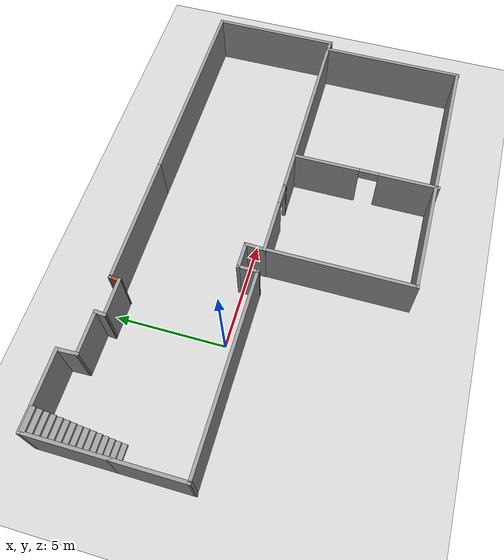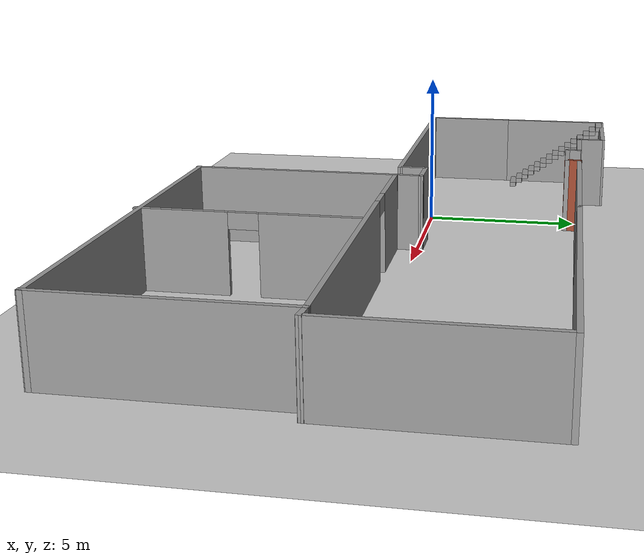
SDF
<sdf version="1.7">
 <world name="default">
  <light name="sun" type="directional">
   <pose>0 0 10 0 -0 0</pose>
   <diffuse>0.8 0.8 0.8 1</diffuse>
   <specular>0.2 0.2 0.2 1</specular>
   <attenuation>
    <range>1000</range>
    <constant>0.9</constant>
    <linear>0.01</linear>
    <quadratic>0.001</quadratic>
   </attenuation>
   <direction>-0.5 0.1 -0.9</direction>
   <spot><inner_angle>0</inner_angle><outer_angle>0</outer_angle><falloff>0</falloff></spot>
  </light>
  <model name="ground_plane">
   <static>1</static>
   <link name="link">
    <collision name="collision">
     <geometry><plane><normal>0 0 1</normal><size>100 100</size></plane></geometry>
     <surface><friction><ode><mu>100</mu><mu2>50</mu2></ode></friction></surface>
    </collision>
    <visual name="visual">
     <cast_shadows>0</cast_shadows>
     <geometry><plane><normal>0 0 1</normal><size>100 100</size></plane></geometry>
     <material>
      <script><uri>file://media/materials/scripts/gazebo.material</uri><name>Gazebo/Grey</name></script>
     </material>
    </visual>
   </link>
  </model>
  <gravity>0 0 -9.8</gravity>
  <magnetic_field>6e-06 2.3e-05 -4.2e-05</magnetic_field>
  <atmosphere type="adiabatic"/>
  <physics type="ode">
   <max_step_size>0.001</max_step_size>
   <real_time_factor>1</real_time_factor>
   <real_time_update_rate>1000</real_time_update_rate>
  </physics>
  <scene><ambient>0.4 0.4 0.4 1</ambient><background>0.7 0.7 0.7 1</background><shadows>1</shadows></scene>
  <audio><device>default</device></audio>
  <spherical_coordinates>
   <surface_model>EARTH_WGS84</surface_model>
   <latitude_deg>0</latitude_deg>
   <longitude_deg>0</longitude_deg>
   <elevation>0</elevation>
   <heading_deg>0</heading_deg>
  </spherical_coordinates>
  <model name="test">
   <pose>5.09811 -0.706058 0 0 -0 0</pose>
   <link name="Stairs_1">
    <visual name="Stairs_1_Visual_0">
     <pose>-10.6248 3.31727 0.083333 0 -0 -3.14159</pose>
     <geometry><box><size>1 0.233333 0.166667</size></box></geometry>
     <material>
      <script><uri>file://media/materials/scripts/gazebo.material</uri><name>Gazebo/Grey</name></script>
      <ambient>1 1 1 1</ambient>
     </material>
     <meta><layer>0</layer></meta>
    </visual>
    <collision name="Stairs_1_Collision_0">
     <geometry><box><size>1 0.233333 0.166667</size></box></geometry>
     <pose>-10.6248 3.31727 0.083333 0 -0 -3.14159</pose>
    </collision>
    <visual name="Stairs_1_Visual_1">
     <pose>-10.6248 3.55061 0.25 0 -0 -3.14159</pose>
     <geometry><box><size>1 0.233333 0.166667</size></box></geometry>
     <material>
      <script><uri>file://media/materials/scripts/gazebo.material</uri><name>Gazebo/Grey</name></script>
      <ambient>1 1 1 1</ambient>
     </material>
     <meta><layer>0</layer></meta>
    </visual>
    <collision name="Stairs_1_Collision_1">
     <geometry><box><size>1 0.233333 0.166667</size></box></geometry>
     <pose>-10.6248 3.55061 0.25 0 -0 -3.14159</pose>
    </collision>
    <visual name="Stairs_1_Visual_2">
     <pose>-10.6248 3.78394 0.416667 0 -0 -3.14159</pose>
     <geometry><box><size>1 0.233333 0.166667</size></box></geometry>
     <material>
      <script><uri>file://media/materials/scripts/gazebo.material</uri><name>Gazebo/Grey</name></script>
      <ambient>1 1 1 1</ambient>
     </material>
     <meta><layer>0</layer></meta>
    </visual>
    <collision name="Stairs_1_Collision_2">
     <geometry><box><size>1 0.233333 0.166667</size></box></geometry>
     <pose>-10.6248 3.78394 0.416667 0 -0 -3.14159</pose>
    </collision>
    <visual name="Stairs_1_Visual_3">
     <pose>-10.6248 4.01727 0.583333 0 -0 -3.14159</pose>
     <geometry><box><size>1 0.233333 0.166667</size></box></geometry>
     <material>
      <script><uri>file://media/materials/scripts/gazebo.material</uri><name>Gazebo/Grey</name></script>
      <ambient>1 1 1 1</ambient>
     </material>
     <meta><layer>0</layer></meta>
    </visual>
    <collision name="Stairs_1_Collision_3">
     <geometry><box><size>1 0.233333 0.166667</size></box></geometry>
     <pose>-10.6248 4.01727 0.583333 0 -0 -3.14159</pose>
    </collision>
    <visual name="Stairs_1_Visual_4">
     <pose>-10.6248 4.25061 0.75 0 -0 -3.14159</pose>
     <geometry><box><size>1 0.233333 0.166667</size></box></geometry>
     <material>
      <script><uri>file://media/materials/scripts/gazebo.material</uri><name>Gazebo/Grey</name></script>
      <ambient>1 1 1 1</ambient>
     </material>
     <meta><layer>0</layer></meta>
    </visual>
    <collision name="Stairs_1_Collision_4">
     <geometry><box><size>1 0.233333 0.166667</size></box></geometry>
     <pose>-10.6248 4.25061 0.75 0 -0 -3.14159</pose>
    </collision>
    <visual name="Stairs_1_Visual_5">
     <pose>-10.6248 4.48394 0.916667 0 -0 -3.14159</pose>
     <geometry><box><size>1 0.233333 0.166667</size></box></geometry>
     <material>
      <script><uri>file://media/materials/scripts/gazebo.material</uri><name>Gazebo/Grey</name></script>
      <ambient>1 1 1 1</ambient>
     </material>
     <meta><layer>0</layer></meta>
    </visual>
    <collision name="Stairs_1_Collision_5">
     <geometry><box><size>1 0.233333 0.166667</size></box></geometry>
     <pose>-10.6248 4.48394 0.916667 0 -0 -3.14159</pose>
    </collision>
    <visual name="Stairs_1_Visual_6">
     <pose>-10.6248 4.71727 1.08333 0 -0 -3.14159</pose>
     <geometry><box><size>1 0.233333 0.166667</size></box></geometry>
     <material>
      <script><uri>file://media/materials/scripts/gazebo.material</uri><name>Gazebo/Grey</name></script>
      <ambient>1 1 1 1</ambient>
     </material>
     <meta><layer>0</layer></meta>
    </visual>
    <collision name="Stairs_1_Collision_6">
     <geometry><box><size>1 0.233333 0.166667</size></box></geometry>
     <pose>-10.6248 4.71727 1.08333 0 -0 -3.14159</pose>
    </collision>
    <visual name="Stairs_1_Visual_7">
     <pose>-10.6248 4.95061 1.25 0 -0 -3.14159</pose>
     <geometry><box><size>1 0.233333 0.166667</size></box></geometry>
     <material>
      <script><uri>file://media/materials/scripts/gazebo.material</uri><name>Gazebo/Grey</name></script>
      <ambient>1 1 1 1</ambient>
     </material>
     <meta><layer>0</layer></meta>
    </visual>
    <collision name="Stairs_1_Collision_7">
     <geometry><box><size>1 0.233333 0.166667</size></box></geometry>
     <pose>-10.6248 4.95061 1.25 0 -0 -3.14159</pose>
    </collision>
    <visual name="Stairs_1_Visual_8">
     <pose>-10.6248 5.18394 1.41667 0 -0 -3.14159</pose>
     <geometry><box><size>1 0.233333 0.166667</size></box></geometry>
     <material>
      <script><uri>file://media/materials/scripts/gazebo.material</uri><name>Gazebo/Grey</name></script>
      <ambient>1 1 1 1</ambient>
     </material>
     <meta><layer>0</layer></meta>
    </visual>
    <collision name="Stairs_1_Collision_8">
     <geometry><box><size>1 0.233333 0.166667</size></box></geometry>
     <pose>-10.6248 5.18394 1.41667 0 -0 -3.14159</pose>
    </collision>
    <visual name="Stairs_1_Visual_9">
     <pose>-10.6248 5.41727 1.58333 0 -0 -3.14159</pose>
     <geometry><box><size>1 0.233333 0.166667</size></box></geometry>
     <material>
      <script><uri>file://media/materials/scripts/gazebo.material</uri><name>Gazebo/Grey</name></script>
      <ambient>1 1 1 1</ambient>
     </material>
     <meta><layer>0</layer></meta>
    </visual>
    <collision name="Stairs_1_Collision_9">
     <geometry><box><size>1 0.233333 0.166667</size></box></geometry>
     <pose>-10.6248 5.41727 1.58333 0 -0 -3.14159</pose>
    </collision>
    <visual name="Stairs_1_Visual_10">
     <pose>-10.6248 5.65061 1.75 0 -0 -3.14159</pose>
     <geometry><box><size>1 0.233333 0.166667</size></box></geometry>
     <material>
      <script><uri>file://media/materials/scripts/gazebo.material</uri><name>Gazebo/Grey</name></script>
      <ambient>1 1 1 1</ambient>
     </material>
     <meta><layer>0</layer></meta>
    </visual>
    <collision name="Stairs_1_Collision_10">
     <geometry><box><size>1 0.233333 0.166667</size></box></geometry>
     <pose>-10.6248 5.65061 1.75 0 -0 -3.14159</pose>
    </collision>
    <visual name="Stairs_1_Visual_11">
     <pose>-10.6248 5.88394 1.91667 0 -0 -3.14159</pose>
     <geometry><box><size>1 0.233333 0.166667</size></box></geometry>
     <material>
      <script><uri>file://media/materials/scripts/gazebo.material</uri><name>Gazebo/Grey</name></script>
      <ambient>1 1 1 1</ambient>
     </material>
     <meta><layer>0</layer></meta>
    </visual>
    <collision name="Stairs_1_Collision_11">
     <geometry><box><size>1 0.233333 0.166667</size></box></geometry>
     <pose>-10.6248 5.88394 1.91667 0 -0 -3.14159</pose>
    </collision>
    <visual name="Stairs_1_Visual_12">
     <pose>-10.6248 6.11727 2.08333 0 -0 -3.14159</pose>
     <geometry><box><size>1 0.233333 0.166667</size></box></geometry>
     <material>
      <script><uri>file://media/materials/scripts/gazebo.material</uri><name>Gazebo/Grey</name></script>
      <ambient>1 1 1 1</ambient>
     </material>
     <meta><layer>0</layer></meta>
    </visual>
    <collision name="Stairs_1_Collision_12">
     <geometry><box><size>1 0.233333 0.166667</size></box></geometry>
     <pose>-10.6248 6.11727 2.08333 0 -0 -3.14159</pose>
    </collision>
    <visual name="Stairs_1_Visual_13">
     <pose>-10.6248 6.35061 2.25 0 -0 -3.14159</pose>
     <geometry><box><size>1 0.233333 0.166667</size></box></geometry>
     <material>
      <script><uri>file://media/materials/scripts/gazebo.material</uri><name>Gazebo/Grey</name></script>
      <ambient>1 1 1 1</ambient>
     </material>
     <meta><layer>0</layer></meta>
    </visual>
    <collision name="Stairs_1_Collision_13">
     <geometry><box><size>1 0.233333 0.166667</size></box></geometry>
     <pose>-10.6248 6.35061 2.25 0 -0 -3.14159</pose>
    </collision>
    <visual name="Stairs_1_Visual_14">
     <pose>-10.6248 6.58394 2.41667 0 -0 -3.14159</pose>
     <geometry><box><size>1 0.233333 0.166667</size></box></geometry>
     <material>
      <script><uri>file://media/materials/scripts/gazebo.material</uri><name>Gazebo/Grey</name></script>
      <ambient>1 1 1 1</ambient>
     </material>
     <meta><layer>0</layer></meta>
    </visual>
    <collision name="Stairs_1_Collision_14">
     <geometry><box><size>1 0.233333 0.166667</size></box></geometry>
     <pose>-10.6248 6.58394 2.41667 0 -0 -3.14159</pose>
    </collision>
   </link>
   <link name="Wall_10">
    <collision name="Wall_10_Collision">
     <geometry><box><size>0.984315 0.15 2.5</size></box></geometry>
     <pose>0 0 1.25 0 -0 0</pose>
    </collision>
    <visual name="Wall_10_Visual">
     <pose>0 0 1.25 0 -0 0</pose>
     <geometry><box><size>0.984315 0.15 2.5</size></box></geometry>
     <material>
      <script><uri>file://media/materials/scripts/gazebo.material</uri><name>Gazebo/Grey</name></script>
      <ambient>1 1 1 1</ambient>
     </material>
     <meta><layer>0</layer></meta>
    </visual>
    <pose>-1.31307 0.421598 0 0 -0 -1.60838</pose>
   </link>
   <link name="Wall_11">
    <pose>0.36193 0.00444 0 0 -0 0</pose>
    <visual name="Wall_11_Visual_0">
     <pose>-0.499507 0 1.25 0 -0 0</pose>
     <geometry><box><size>2.50099 0.15 2.5</size></box></geometry>
     <material>
      <script><uri>file://media/materials/scripts/gazebo.material</uri><name>Gazebo/Grey</name></script>
      <ambient>1 1 1 1</ambient>
     </material>
     <meta><layer>0</layer></meta>
    </visual>
    <collision name="Wall_11_Collision_0">
     <geometry><box><size>2.50099 0.15 2.5</size></box></geometry>
     <pose>-0.499507 0 1.25 0 -0 0</pose>
    </collision>
    <visual name="Wall_11_Visual_1">
     <pose>1.70049 0 1.25 0 -0 0</pose>
     <geometry><box><size>0.099014 0.15 2.5</size></box></geometry>
     <material>
      <script><uri>file://media/materials/scripts/gazebo.material</uri><name>Gazebo/Grey</name></script>
      <ambient>1 1 1 1</ambient>
     </material>
     <meta><layer>0</layer></meta>
    </visual>
    <collision name="Wall_11_Collision_1">
     <geometry><box><size>0.099014 0.15 2.5</size></box></geometry>
     <pose>1.70049 0 1.25 0 -0 0</pose>
    </collision>
    <visual name="Wall_11_Visual_2">
     <pose>1.20099 0 2.25 0 -0 0</pose>
     <geometry><box><size>0.9 0.15 0.5</size></box></geometry>
     <material>
      <script><uri>file://media/materials/scripts/gazebo.material</uri><name>Gazebo/Grey</name></script>
      <ambient>1 1 1 1</ambient>
     </material>
     <meta><layer>0</layer></meta>
    </visual>
    <collision name="Wall_11_Collision_2">
     <geometry><box><size>0.9 0.15 0.5</size></box></geometry>
     <pose>1.20099 0 2.25 0 -0 0</pose>
    </collision>
   </link>
   <link name="Wall_13">
    <collision name="Wall_13_Collision">
     <geometry><box><size>6 0.15 2.5</size></box></geometry>
     <pose>0 0 1.25 0 -0 0</pose>
    </collision>
    <visual name="Wall_13_Visual">
     <pose>0 0 1.25 0 -0 0</pose>
     <geometry><box><size>6 0.15 2.5</size></box></geometry>
     <material>
      <script><uri>file://media/materials/scripts/gazebo.material</uri><name>Gazebo/Grey</name></script>
      <ambient>1 1 1 1</ambient>
     </material>
     <meta><layer>0</layer></meta>
    </visual>
    <pose>-1.37238 5.83875 0 0 -0 3.14159</pose>
   </link>
   <link name="Wall_14">
    <collision name="Wall_14_Collision">
     <geometry><box><size>0.560644 0.15 2.5</size></box></geometry>
     <pose>0 0 1.25 0 -0 0</pose>
    </collision>
    <visual name="Wall_14_Visual">
     <pose>0 0 1.25 0 -0 0</pose>
     <geometry><box><size>0.560644 0.15 2.5</size></box></geometry>
     <material>
      <script><uri>file://media/materials/scripts/gazebo.material</uri><name>Gazebo/Bricks</name></script>
      <ambient>1 1 1 1</ambient>
     </material>
     <meta><layer>0</layer></meta>
    </visual>
    <pose>-4.3249 5.63529 0 0 -0 -1.70522</pose>
   </link>
   <link name="Wall_16">
    <collision name="Wall_16_Collision">
     <geometry><box><size>1.75 0.15 2.5</size></box></geometry>
     <pose>0 0 1.25 0 -0 0</pose>
    </collision>
    <visual name="Wall_16_Visual">
     <pose>0 0 1.25 0 -0 0</pose>
     <geometry><box><size>1.75 0.15 2.5</size></box></geometry>
     <material>
      <script><uri>file://media/materials/scripts/gazebo.material</uri><name>Gazebo/Grey</name></script>
      <ambient>1 1 1 1</ambient>
     </material>
     <meta><layer>0</layer></meta>
    </visual>
    <pose>-5.13458 5.43182 0 0 -0 3.14159</pose>
   </link>
   <link name="Wall_17">
    <collision name="Wall_17_Collision">
     <geometry><box><size>0.537341 0.15 2.5</size></box></geometry>
     <pose>0 0 1.25 0 -0 0</pose>
    </collision>
    <visual name="Wall_17_Visual">
     <pose>0 0 1.25 0 -0 0</pose>
     <geometry><box><size>0.537341 0.15 2.5</size></box></geometry>
     <material>
      <script><uri>file://media/materials/scripts/gazebo.material</uri><name>Gazebo/Grey</name></script>
      <ambient>1 1 1 1</ambient>
     </material>
     <meta><layer>0</layer></meta>
    </visual>
    <pose>-5.93443 5.62465 0 0 -0 1.47779</pose>
   </link>
   <link name="Wall_18">
    <collision name="Wall_18_Collision">
     <geometry><box><size>2 0.15 2.5</size></box></geometry>
     <pose>0 0 1.25 0 -0 0</pose>
    </collision>
    <visual name="Wall_18_Visual">
     <pose>0 0 1.25 0 -0 0</pose>
     <geometry><box><size>2 0.15 2.5</size></box></geometry>
     <material>
      <script><uri>file://media/materials/scripts/gazebo.material</uri><name>Gazebo/Grey</name></script>
      <ambient>1 1 1 1</ambient>
     </material>
     <meta><layer>0</layer></meta>
    </visual>
    <pose>-6.85938 5.83542 0 0 -0 3.14159</pose>
   </link>
   <link name="Wall_20">
    <collision name="Wall_20_Collision">
     <geometry><box><size>3.25 0.15 2.5</size></box></geometry>
     <pose>0 0 1.25 0 -0 0</pose>
    </collision>
    <visual name="Wall_20_Visual">
     <pose>0 0 1.25 0 -0 0</pose>
     <geometry><box><size>3.25 0.15 2.5</size></box></geometry>
     <material>
      <script><uri>file://media/materials/scripts/gazebo.material</uri><name>Gazebo/Grey</name></script>
      <ambient>1 1 1 1</ambient>
     </material>
     <meta><layer>0</layer></meta>
    </visual>
    <pose>-11.1587 1.53876 0 0 -0 1.5708</pose>
   </link>
   <link name="Wall_22">
    <collision name="Wall_22_Collision">
     <geometry><box><size>3.75 0.15 2.5</size></box></geometry>
     <pose>0 0 1.25 0 -0 0</pose>
    </collision>
    <visual name="Wall_22_Visual">
     <pose>0 0 1.25 0 -0 0</pose>
     <geometry><box><size>3.75 0.15 2.5</size></box></geometry>
     <material>
      <script><uri>file://media/materials/scripts/gazebo.material</uri><name>Gazebo/Grey</name></script>
      <ambient>1 1 1 1</ambient>
     </material>
     <meta><layer>0</layer></meta>
    </visual>
    <pose>-11.1587 4.88876 0 0 -0 1.5708</pose>
   </link>
   <link name="Wall_24">
    <collision name="Wall_24_Collision">
     <geometry><box><size>3.5 0.15 2.5</size></box></geometry>
     <pose>0 0 1.25 0 -0 0</pose>
    </collision>
    <visual name="Wall_24_Visual">
     <pose>0 0 1.25 0 -0 0</pose>
     <geometry><box><size>3.5 0.15 2.5</size></box></geometry>
     <material>
      <script><uri>file://media/materials/scripts/gazebo.material</uri><name>Gazebo/Grey</name></script>
      <ambient>1 1 1 1</ambient>
     </material>
     <meta><layer>0</layer></meta>
    </visual>
    <pose>-9.48372 6.68875 0 0 -0 0</pose>
   </link>
   <link name="Wall_25">
    <collision name="Wall_25_Collision">
     <geometry><box><size>1.00368 0.15 2.5</size></box></geometry>
     <pose>0 0 1.25 0 -0 0</pose>
    </collision>
    <visual name="Wall_25_Visual">
     <pose>0 0 1.25 0 -0 0</pose>
     <geometry><box><size>1.00368 0.15 2.5</size></box></geometry>
     <material>
      <script><uri>file://media/materials/scripts/gazebo.material</uri><name>Gazebo/Grey</name></script>
      <ambient>1 1 1 1</ambient>
     </material>
     <meta><layer>0</layer></meta>
    </visual>
    <pose>-7.79655 6.26209 0 0 -0 -1.54228</pose>
   </link>
   <link name="Wall_29">
    <collision name="Wall_29_Collision">
     <geometry><box><size>6.75658 0.15 2.5</size></box></geometry>
     <pose>0 0 1.25 0 -0 0</pose>
    </collision>
    <visual name="Wall_29_Visual">
     <pose>0 0 1.25 0 -0 0</pose>
     <geometry><box><size>6.75658 0.15 2.5</size></box></geometry>
     <material>
      <script><uri>file://media/materials/scripts/gazebo.material</uri><name>Gazebo/Grey</name></script>
      <ambient>1 1 1 1</ambient>
     </material>
     <meta><layer>0</layer></meta>
    </visual>
    <pose>-1.31307 -3.29885 0 0 -0 -1.5708</pose>
   </link>
   <link name="Wall_30">
    <collision name="Wall_30_Collision">
     <geometry><box><size>12.164 0.15 2.5</size></box></geometry>
     <pose>0 0 1.25 0 -0 0</pose>
    </collision>
    <visual name="Wall_30_Visual">
     <pose>0 0 1.25 0 -0 0</pose>
     <geometry><box><size>12.164 0.15 2.5</size></box></geometry>
     <material>
      <script><uri>file://media/materials/scripts/gazebo.material</uri><name>Gazebo/Grey</name></script>
      <ambient>1 1 1 1</ambient>
     </material>
     <meta><layer>0</layer></meta>
    </visual>
    <pose>4.69392 -6.57829 0 0 -0 0</pose>
   </link>
   <link name="Wall_31">
    <collision name="Wall_31_Collision">
     <geometry><box><size>6.75658 0.15 2.5</size></box></geometry>
     <pose>0 0 1.25 0 -0 0</pose>
    </collision>
    <visual name="Wall_31_Visual">
     <pose>0 0 1.25 0 -0 0</pose>
     <geometry><box><size>6.75658 0.15 2.5</size></box></geometry>
     <material>
      <script><uri>file://media/materials/scripts/gazebo.material</uri><name>Gazebo/Grey</name></script>
      <ambient>1 1 1 1</ambient>
     </material>
     <meta><layer>0</layer></meta>
    </visual>
    <pose>10.7009 -3.29885 0 0 -0 1.5708</pose>
   </link>
   <link name="Wall_32">
    <collision name="Wall_32_Collision">
     <geometry><box><size>8.81402 0.15 2.5</size></box></geometry>
     <pose>0 0 1.25 0 -0 0</pose>
    </collision>
    <visual name="Wall_32_Visual">
     <pose>0 0 1.25 0 -0 0</pose>
     <geometry><box><size>8.81402 0.15 2.5</size></box></geometry>
     <material>
      <script><uri>file://media/materials/scripts/gazebo.material</uri><name>Gazebo/Grey</name></script>
      <ambient>1 1 1 1</ambient>
     </material>
     <meta><layer>0</layer></meta>
    </visual>
    <pose>6.36892 0.016367 0 0 -0 -3.13884</pose>
   </link>
   <link name="Wall_35">
    <pose>3.78621 -3.39086 0 0 -0 -1.5708</pose>
    <visual name="Wall_35_Visual_0">
     <pose>-1.85692 0 1.25 0 -0 0</pose>
     <geometry><box><size>3.03617 0.15 2.5</size></box></geometry>
     <material>
      <script><uri>file://media/materials/scripts/gazebo.material</uri><name>Gazebo/Grey</name></script>
      <ambient>1 1 1 1</ambient>
     </material>
     <meta><layer>0</layer></meta>
    </visual>
    <collision name="Wall_35_Collision_0">
     <geometry><box><size>3.03617 0.15 2.5</size></box></geometry>
     <pose>-1.85692 0 1.25 0 -0 0</pose>
    </collision>
    <visual name="Wall_35_Visual_1">
     <pose>1.96808 0 1.25 0 -0 0</pose>
     <geometry><box><size>2.81383 0.15 2.5</size></box></geometry>
     <material>
      <script><uri>file://media/materials/scripts/gazebo.material</uri><name>Gazebo/Grey</name></script>
      <ambient>1 1 1 1</ambient>
     </material>
     <meta><layer>0</layer></meta>
    </visual>
    <collision name="Wall_35_Collision_1">
     <geometry><box><size>2.81383 0.15 2.5</size></box></geometry>
     <pose>1.96808 0 1.25 0 -0 0</pose>
    </collision>
    <visual name="Wall_35_Visual_2">
     <pose>0.111167 0 2.25 0 -0 0</pose>
     <geometry><box><size>0.9 0.15 0.5</size></box></geometry>
     <material>
      <script><uri>file://media/materials/scripts/gazebo.material</uri><name>Gazebo/Grey</name></script>
      <ambient>1 1 1 1</ambient>
     </material>
     <meta><layer>0</layer></meta>
    </visual>
    <collision name="Wall_35_Collision_2">
     <geometry><box><size>0.9 0.15 0.5</size></box></geometry>
     <pose>0.111167 0 2.25 0 -0 0</pose>
    </collision>
   </link>
   <link name="Wall_37">
    <collision name="Wall_37_Collision">
     <geometry><box><size>9.75 0.15 2.5</size></box></geometry>
     <pose>0 0 1.25 0 -0 0</pose>
    </collision>
    <visual name="Wall_37_Visual">
     <pose>0 0 1.25 0 -0 0</pose>
     <geometry><box><size>9.75 0.15 2.5</size></box></geometry>
     <material>
      <script><uri>file://media/materials/scripts/gazebo.material</uri><name>Gazebo/Grey</name></script>
      <ambient>1 1 1 1</ambient>
     </material>
     <meta><layer>0</layer></meta>
    </visual>
    <pose>6.35262 5.83875 0 0 -0 0</pose>
   </link>
   <link name="Wall_38">
    <collision name="Wall_38_Collision">
     <geometry><box><size>6 0.15 2.5</size></box></geometry>
     <pose>0 0 1.25 0 -0 0</pose>
    </collision>
    <visual name="Wall_38_Visual">
     <pose>0 0 1.25 0 -0 0</pose>
     <geometry><box><size>6 0.15 2.5</size></box></geometry>
     <material>
      <script><uri>file://media/materials/scripts/gazebo.material</uri><name>Gazebo/Grey</name></script>
      <ambient>1 1 1 1</ambient>
     </material>
     <meta><layer>0</layer></meta>
    </visual>
    <pose>11.1526 2.91376 0 0 -0 -1.5708</pose>
   </link>
   <link name="Wall_39">
    <collision name="Wall_39_Collision">
     <geometry><box><size>0.603423 0.15 2.5</size></box></geometry>
     <pose>0 0 1.25 0 -0 0</pose>
    </collision>
    <visual name="Wall_39_Visual">
     <pose>0 0 1.25 0 -0 0</pose>
     <geometry><box><size>0.603423 0.15 2.5</size></box></geometry>
     <material>
      <script><uri>file://media/materials/scripts/gazebo.material</uri><name>Gazebo/Grey</name></script>
      <ambient>1 1 1 1</ambient>
     </material>
     <meta><layer>0</layer></meta>
    </visual>
    <pose>10.9268 0.008525 0 0 -0 3.05428</pose>
   </link>
   <link name="Wall_7">
    <collision name="Wall_7_Collision">
     <geometry><box><size>8.91135 0.15 2.5</size></box></geometry>
     <pose>0 0 1.25 0 -0 0</pose>
    </collision>
    <visual name="Wall_7_Visual">
     <pose>0 0 1.25 0 -0 0</pose>
     <geometry><box><size>8.91135 0.15 2.5</size></box></geometry>
     <material>
      <script><uri>file://media/materials/scripts/gazebo.material</uri><name>Gazebo/Grey</name></script>
      <ambient>1 1 1 1</ambient>
     </material>
     <meta><layer>0</layer></meta>
    </visual>
    <pose>-6.77805 -0.002378 0 0 -0 -0.002024</pose>
   </link>
   <link name="Wall_8">
    <collision name="Wall_8_Collision">
     <geometry><box><size>1 0.15 2.5</size></box></geometry>
     <pose>0 0 1.25 0 -0 0</pose>
    </collision>
    <visual name="Wall_8_Visual">
     <pose>0 0 1.25 0 -0 0</pose>
     <geometry><box><size>1 0.15 2.5</size></box></geometry>
     <material>
      <script><uri>file://media/materials/scripts/gazebo.material</uri><name>Gazebo/Grey</name></script>
      <ambient>1 1 1 1</ambient>
     </material>
     <meta><layer>0</layer></meta>
    </visual>
    <pose>-2.39738 0.413755 0 0 -0 1.5708</pose>
   </link>
   <link name="Wall_9">
    <collision name="Wall_9_Collision">
     <geometry><box><size>1.25 0.15 2.5</size></box></geometry>
     <pose>0 0 1.25 0 -0 0</pose>
    </collision>
    <visual name="Wall_9_Visual">
     <pose>0 0 1.25 0 -0 0</pose>
     <geometry><box><size>1.25 0.15 2.5</size></box></geometry>
     <material>
      <script><uri>file://media/materials/scripts/gazebo.material</uri><name>Gazebo/Grey</name></script>
      <ambient>1 1 1 1</ambient>
     </material>
     <meta><layer>0</layer></meta>
    </visual>
    <pose>-1.84739 0.838755 0 0 -0 0</pose>
   </link>
   <static>1</static>
  </model>
 </world>
</sdf>
